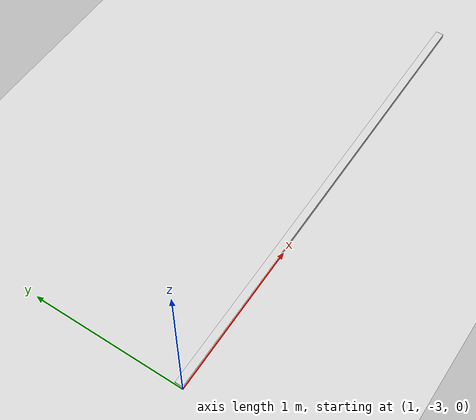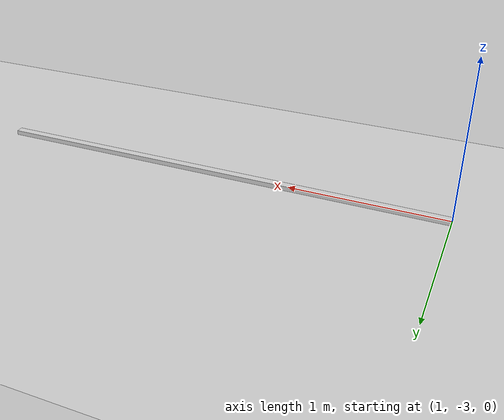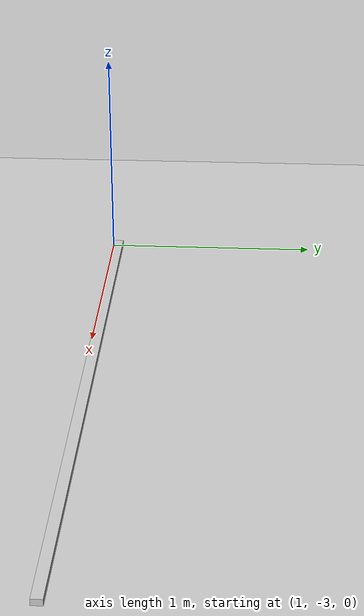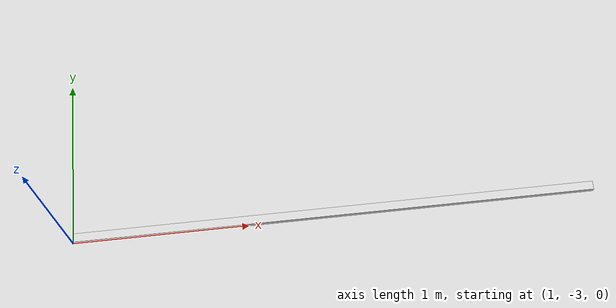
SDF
<?xml version="1.0"?>
<sdf version="1.4">
  <world name="default">
    <include>
      <uri>model://ground_plane</uri>
    </include>
    <include>
      <uri>model://sun</uri>
    </include>
    <include>
      <uri>model://bump_3cm</uri>
      <name>bump_3cm</name>
      <pose>1 -3 0  0 0 1.5708</pose>
    </include>
  </world>
</sdf>

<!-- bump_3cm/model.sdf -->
<sdf version='1.6'>
  <model name='bump_3cm'>
  <pose>12 -2 0  1.5708 0 -1.5708</pose>
  <static>true</static>
  <link name="body">
  <collision name="collision">
    <geometry>
      <mesh><uri>model://bump_3cm/bump_3cm.dae</uri></mesh>
    </geometry>
    <surface>
      <friction>
        <ode>
          <mu>100</mu>
          <mu2>50</mu2>
        </ode>
      </friction>
    </surface>
  </collision>
    <visual name="visual">
      <geometry>
        <mesh><uri>model://bump_3cm/bump_3cm.dae</uri></mesh>
      </geometry>
    </visual>
  </link>
  </model>
</sdf>
